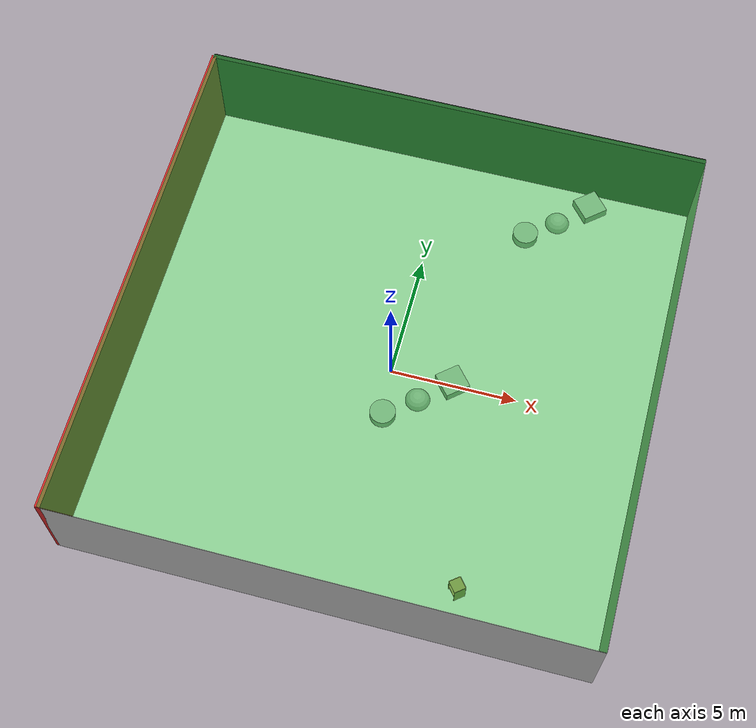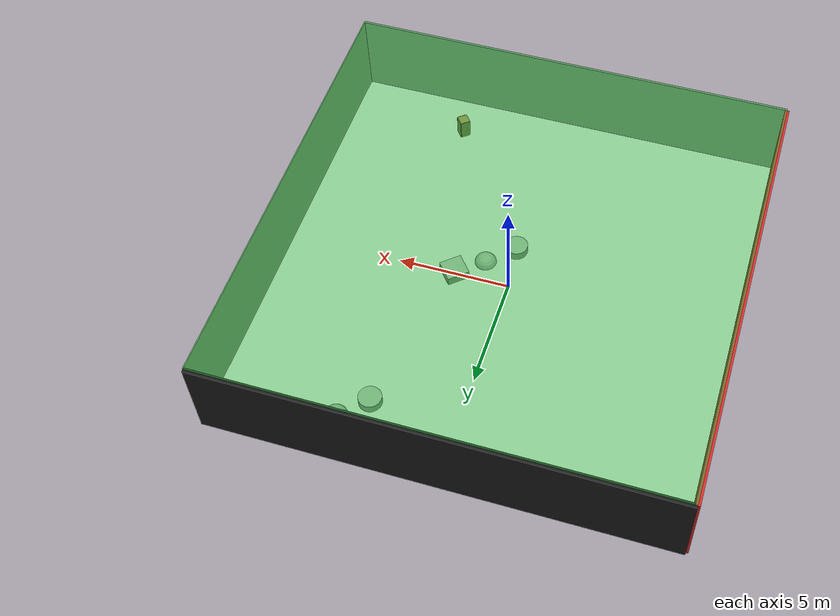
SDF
<sdf version="1.4">
 <world name="default">
  <physics type="ode">
   <max_step_size>0.001</max_step_size>
   <real_time_factor>1</real_time_factor>
   <real_time_update_rate>1000</real_time_update_rate>
   <gravity>0 0 -9.8</gravity>
  </physics>
  <scene><ambient>0.4 0.4 0.4 1</ambient><background>0.7 0.7 0.7 1</background><shadows>1</shadows></scene>
  <model name="Surrounding">
   <static>1</static>
   <link name="Ceiling">
    <collision name="Ceiling_Collision"><geometry><box><size>20 20 0.1</size></box></geometry></collision>
    <visual name="Ceiling_Visual">
     <geometry><box><size>20 20 0.1</size></box></geometry>
     <material>
      <script><uri>file://media/materials/scripts/gazebo.material</uri><name>Gazebo/GreenTransparent</name></script>
     </material>
    </visual>
    <pose>0 0 4.05 0 0 0</pose>
   </link>
   <link name="Wall_South">
    <collision name="Wall_South_Collision">
     <geometry><box><size>20 0 4</size></box></geometry>
     <pose>0 0 2 0 -0 0</pose>
    </collision>
    <visual name="Wall_South_Visual">
     <pose>0 0 2 0 -0 0</pose>
     <geometry><box><size>20 0 4</size></box></geometry>
     <material>
      <script><uri>file://media/materials/scripts/gazebo.material</uri><name>Gazebo/PioneerBody</name></script>
     </material>
    </visual>
    <velocity_decay><linear>0</linear><angular>0</angular></velocity_decay>
    <pose>0 -10 0 0 -0 0</pose>
   </link>
   <link name="Wall_East">
    <collision name="Wall_21_Collision">
     <geometry><box><size>20 0 4</size></box></geometry>
     <pose>0 0 2 0 -0 0</pose>
    </collision>
    <visual name="Wall_21_Visual">
     <pose>0 0 2 0 -0 0</pose>
     <geometry><box><size>20 0 4</size></box></geometry>
     <material>
      <script><uri>file://media/materials/scripts/gazebo.material</uri><name>Gazebo/PaintedWall</name></script>
     </material>
    </visual>
    <velocity_decay><linear>0</linear><angular>0</angular></velocity_decay>
    <pose>10 0 0 0 -0 1.5708</pose>
   </link>
   <link name="Wall_North">
    <collision name="Wall_22_Collision">
     <geometry><box><size>20 0.2 4</size></box></geometry>
     <pose>0 0 2 0 -0 0</pose>
    </collision>
    <visual name="Wall_22_Visual">
     <pose>0 0 2 0 -0 0</pose>
     <geometry><box><size>20 0.2 4</size></box></geometry>
     <material>
      <script><uri>file://media/materials/scripts/gazebo.material</uri><name>Gazebo/Black</name></script>
     </material>
    </visual>
    <velocity_decay><linear>0</linear><angular>0</angular></velocity_decay>
    <pose>0 10 0 0 -0 0</pose>
   </link>
   <link name="Wall_West">
    <collision name="Wall_23_Collision">
     <geometry><box><size>20 0.2 4</size></box></geometry>
     <pose>0 0 2 0 -0 0</pose>
    </collision>
    <visual name="Wall_23_Visual">
     <pose>0 0 2 0 -0 0</pose>
     <geometry><box><size>20 0.2 4</size></box></geometry>
     <material>
      <script><uri>file://media/materials/scripts/gazebo.material</uri><name>Gazebo/RedGlow</name></script>
     </material>
    </visual>
    <velocity_decay><linear>0</linear><angular>0</angular></velocity_decay>
    <pose>-10 0 0 0 0 -1.5708</pose>
   </link>
   <link name="Ground_link">
    <collision name="collision">
     <pose>0 0 .05 0 -0 0</pose>
     <geometry><box><size>20 20 0.1</size></box></geometry>
    </collision>
    <visual name="visual">
     <pose>0 0 .05 0 -0 0</pose>
     <geometry><box><size>20 20 0.1</size></box></geometry>
     <material>
      <script><uri>file://media/materials/scripts/gazebo.material</uri><name>Gazebo/WhiteGlow</name></script>
     </material>
    </visual>
   </link>
   <static>1</static>
  </model>
  <spherical_coordinates>
   <surface_model>EARTH_WGS84</surface_model>
   <latitude_deg>0</latitude_deg>
   <longitude_deg>0</longitude_deg>
   <elevation>0</elevation>
   <heading_deg>0</heading_deg>
  </spherical_coordinates>
  <light name="lightball_0" type="diffuse">
   <diffuse>0.8 0.8 0.8 1</diffuse>
   <specular>0.2 0.2 0.2 1</specular>
   <attenuation>
    <range>100</range>
    <constant>0.7</constant>
    <linear>0.01</linear>
    <quadratic>0.001</quadratic>
   </attenuation>
   <direction>-0.5 0.1 -0.9</direction>
   <pose>1.65817121544 -9.02343729527 3.39294667985 0 0 0</pose>
  </light>
  <light name="lightball_1" type="diffuse">
   <diffuse>0.8 0.8 0.8 1</diffuse>
   <specular>0.2 0.2 0.2 1</specular>
   <attenuation>
    <range>100</range>
    <constant>0.7</constant>
    <linear>0.01</linear>
    <quadratic>0.001</quadratic>
   </attenuation>
   <direction>-0.5 0.1 -0.9</direction>
   <pose>-4.54127326465 2.0171539933 1.02079397991 0 0 0</pose>
  </light>
  <light name="lightball_2" type="diffuse">
   <diffuse>0.8 0.8 0.8 1</diffuse>
   <specular>0.2 0.2 0.2 1</specular>
   <attenuation>
    <range>100</range>
    <constant>0.7</constant>
    <linear>0.01</linear>
    <quadratic>0.001</quadratic>
   </attenuation>
   <direction>-0.5 0.1 -0.9</direction>
   <pose>-7.86867719393 -5.40772509524 2.5564121047 0 0 0</pose>
  </light>
  <light name="lightball_3" type="diffuse">
   <diffuse>0.8 0.8 0.8 1</diffuse>
   <specular>0.2 0.2 0.2 1</specular>
   <attenuation>
    <range>100</range>
    <constant>0.7</constant>
    <linear>0.01</linear>
    <quadratic>0.001</quadratic>
   </attenuation>
   <direction>-0.5 0.1 -0.9</direction>
   <pose>-0.106883768544 1.47344630246 1.53165635576 0 0 0</pose>
  </light>
  <include>
   <uri>model://textured_shapes</uri>
   <pose>1.31791517081 -0.959214871148 0 0 0 2.27999790628</pose>
  </include>
  <include><uri>model://cabinet</uri><pose>4.57508882679 -8.04130011951 0 0 0 0.675295821798</pose></include>
  <include>
   <uri>model://textured_shapes</uri>
   <pose>4.88317279579 8.19949337407 0 0 0 2.28031831062</pose>
  </include>
 </world>
</sdf>

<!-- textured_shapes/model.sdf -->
<sdf version="1.6">
  <model name="textured_shapes">
    <pose>0 0 0.5 0 0 0</pose>
    <link name="box">
      <pose>0 -1.5 0 0 0 0</pose>
      <collision name="collision">
        <geometry>
          <box>
            <size>1 1 1</size>
          </box>
        </geometry>
      </collision>
      <visual name="visual">
        <geometry>
          <box>
            <size>1 1 1</size>
          </box>
        </geometry>
        <material>
          <script>
            <uri>model://../model_source/models/textured_shapes/materials/scripts</uri>
            <uri>model://../model_source/models/textured_shapes/materials/textures</uri>
            <name>TexturedShape/Squares</name>
          </script>
        </material>
      </visual>
    </link>
    <link name="sphere">
      <collision name="collision">
        <geometry>
          <sphere>
            <radius>0.5</radius>
          </sphere>
        </geometry>
      </collision>
      <visual name="visual">
        <geometry>
          <sphere>
            <radius>0.5</radius>
          </sphere>
        </geometry>
        <material>
          <script>
            <uri>model://../model_source/models/textured_shapes/materials/scripts</uri>
            <uri>model://../model_source/models/textured_shapes/materials/textures</uri>
            <name>TexturedShape/Squares</name>
          </script>
        </material>
      </visual>
    </link>
    <link name="cylinder">
      <pose>0 1.5 0 0 0 0</pose>
      <collision name="collision">
        <geometry>
          <cylinder>
            <radius>0.5</radius>
            <length>1</length>
          </cylinder>
        </geometry>
      </collision>
      <visual name="visual">
        <geometry>
          <cylinder>
            <radius>0.5</radius>
            <length>1</length>
          </cylinder>
        </geometry>
        <material>
          <script>
            <uri>model://../model_source/models/textured_shapes/materials/scripts</uri>
            <uri>model://../model_source/models/textured_shapes/materials/textures</uri>
            <name>TexturedShape/Squares</name>
          </script>
        </material>
      </visual>
    </link>
  </model>
</sdf>

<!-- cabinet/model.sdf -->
<sdf version="1.5">
  <model name="cabinet">
    <static>true</static>
    <link name="cabinet_bottom_plate">
      <inertial>
        <pose>0 0 -1 0 0 0</pose>
        <inertia>
          <ixx>2.050000</ixx>
          <ixy>0</ixy>
          <ixz>0</ixz>
          <iyy>2.050000</iyy>
          <iyz>0</iyz>
          <izz>2.050000</izz>
        </inertia>
        <mass>25.000000</mass>
      </inertial>
      <collision name="cabinet_bottom_plate_geom">
        <pose>0 0 0.010000 0 0 0</pose>
        <geometry>
          <box>
            <size>0.450000 0.450000 0.020000</size>
          </box>
        </geometry>
      </collision>
      <visual name="cabinet_bottom_plate_geom_visual">
        <pose>0 0 0.010000 0 0 0</pose>
        <geometry>
          <box>
            <size>0.450000 0.450000 0.020000</size>
          </box>
        </geometry>
        <material>
          <script>
            <uri>model://media/materials/scripts/gazebo.material</uri>
            <name>Gazebo/Wood</name>
          </script>
        </material>
      </visual>
      <collision name="cabinet_bottom_plate_geom_cabinet_back_plate">
        <pose>0.235000 0 0.510000 0 0 0</pose>
        <geometry>
          <box>
            <size>0.020000 0.450000 1.020000</size>
          </box>
        </geometry>
      </collision>
      <visual name="cabinet_bottom_plate_geom_cabinet_back_plate_visual">
        <pose>0.235000 0 0.510000 0 0 0</pose>
        <geometry>
          <box>
            <size>0.020000 0.450000 1.020000</size>
          </box>
        </geometry>
        <material>
          <script>
            <uri>model://media/materials/scripts/gazebo.material</uri>
            <name>Gazebo/Wood</name>
          </script>
        </material>
      </visual>
      <collision name="cabinet_bottom_plate_geom_cabinet_left_plate">
        <pose>0 0.235000 0.510000 0 0 0</pose>
        <geometry>
          <box>
            <size>0.450000 0.020000 1.020000</size>
          </box>
        </geometry>
      </collision>
      <visual name="cabinet_bottom_plate_geom_cabinet_left_plate_visual">
        <pose>0 0.235000 0.510000 0 0 0</pose>
        <geometry>
          <box>
            <size>0.450000 0.020000 1.020000</size>
          </box>
        </geometry>
        <material>
          <script>
            <uri>model://media/materials/scripts/gazebo.material</uri>
            <name>Gazebo/Wood</name>
          </script>
        </material>
      </visual>
      <collision name="cabinet_bottom_plate_geom_cabinet_middle_plate">
        <pose>0 0 0.510000 0 0 0</pose>
        <geometry>
          <box>
            <size>0.450000 0.450000 0.020000</size>
          </box>
        </geometry>
      </collision>
      <visual name="cabinet_bottom_plate_geom_cabinet_middle_plate_visual">
        <pose>0 0 0.510000 0 0 0</pose>
        <geometry>
          <box>
            <size>0.450000 0.450000 0.020000</size>
          </box>
        </geometry>
        <material>
          <script>
            <uri>model://media/materials/scripts/gazebo.material</uri>
            <name>Gazebo/Wood</name>
          </script>
        </material>
      </visual>
      <collision name="cabinet_bottom_plate_geom_cabinet_right_plate">
        <pose>0 -0.235000 0.510000 0 0 0</pose>
        <geometry>
          <box>
            <size>0.450000 0.020000 1.020000</size>
          </box>
        </geometry>
      </collision>
      <visual name="cabinet_bottom_plate_geom_cabinet_right_plate_visual">
        <pose>0 -0.235000 0.510000 0 0 0</pose>
        <geometry>
          <box>
            <size>0.450000 0.020000 1.020000</size>
          </box>
        </geometry>
        <material>
          <script>
            <uri>model://media/materials/scripts/gazebo.material</uri>
            <name>Gazebo/Wood</name>
          </script>
        </material>
      </visual>
      <collision name="cabinet_bottom_plate_geom_cabinet_top_plate">
        <pose>0 0 1.010000 0 0 0</pose>
        <geometry>
          <box>
            <size>0.450000 0.450000 0.020000</size>
          </box>
        </geometry>
      </collision>
      <visual name="cabinet_bottom_plate_geom_cabinet_top_plate_visual">
        <pose>0 0 1.010000 0 0 0</pose>
        <geometry>
          <box>
            <size>0.450000 0.450000 0.020000</size>
          </box>
        </geometry>
        <material>
          <script>
            <uri>model://media/materials/scripts/gazebo.material</uri>
            <name>Gazebo/Wood</name>
          </script>
        </material>
      </visual>
    </link>
  </model>
</sdf>
